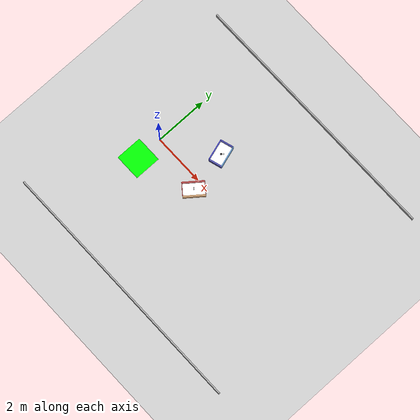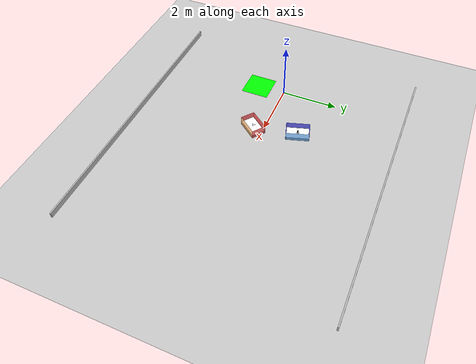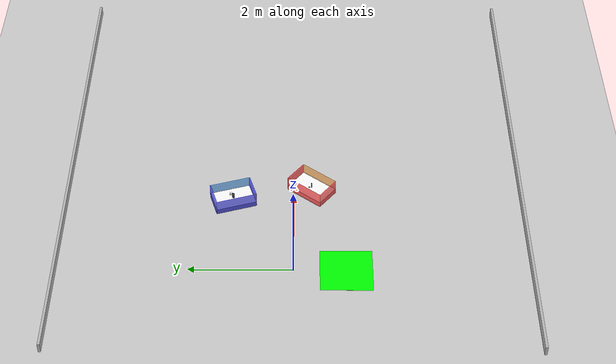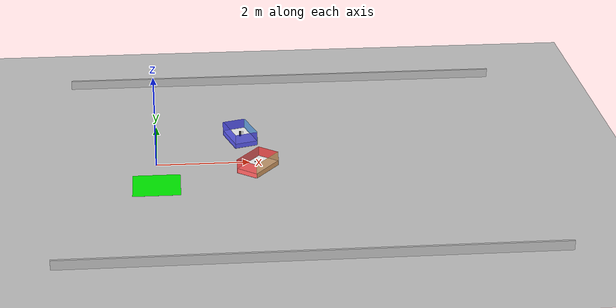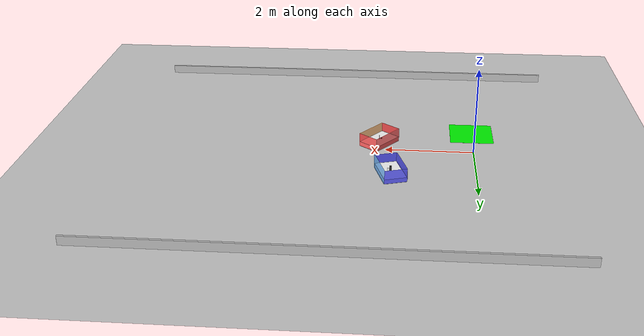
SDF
<?xml version="1.0" ?>
<sdf version="1.6">
  <world name="atwork_2024_world">
    <physics name="1ms" type="ignored">
      <max_step_size>0.001</max_step_size>
      <real_time_factor>1.0</real_time_factor>
    </physics>
    <plugin
      filename="gz-sim-physics-system"
      name="gz::sim::systems::Physics">
    </plugin>
    <plugin
      filename="gz-sim-user-commands-system"
      name="gz::sim::systems::UserCommands">
    </plugin>
    <plugin
      filename="gz-sim-scene-broadcaster-system"
      name="gz::sim::systems::SceneBroadcaster">
    </plugin>
    <plugin
      filename="gz-sim-sensors-system"
      name="gz::sim::systems::Sensors">
      <render_engine>ogre</render_engine>
    </plugin>
    <plugin
      filename="gz-sim-imu-system"
      name="gz::sim::systems::Imu">
    </plugin>
    <!-- A global light source -->
    <include>
      <uri>https://fuel.gazebosim.org/1.0/OpenRobotics/models/Sun</uri>
    </include>
    <!-- A ground plane -->
    <include>
      <uri>https://fuel.gazebosim.org/1.0/OpenRobotics/models/Ground Plane</uri>
    </include>

    <!-- Arena Walls (Extended layout to match pose_dict) -->
    <model name="arena_walls">
      <static>true</static>
      <link name="link">
        <collision name="wall1">
          <pose>3 4.5 0.1 0 0 0</pose>
          <geometry><box><size>10 0.05 0.2</size></box></geometry>
        </collision>
        <visual name="wall1_v">
          <pose>3 4.5 0.1 0 0 0</pose>
          <geometry><box><size>10 0.05 0.2</size></box></geometry>
        </visual>
        <collision name="wall2">
          <pose>3 -4.5 0.1 0 0 0</pose>
          <geometry><box><size>10 0.05 0.2</size></box></geometry>
        </collision>
        <visual name="wall2_v">
          <pose>3 -4.5 0.1 0 0 0</pose>
          <geometry><box><size>10 0.05 0.2</size></box></geometry>
        </visual>
      </link>
    </model>

    <!-- START Area (Green Tape) -->
    <model name="start_area">
      <static>true</static>
      <pose>0 -1 0.001 0 0 0</pose>
      <link name="link">
        <visual name="visual">
          <geometry><plane><normal>0 0 1</normal><size>1 1</size></plane></geometry>
          <material><ambient>0 1 0 1</ambient><diffuse>0 1 0 1</diffuse></material>
        </visual>
      </link>
    </model>

    <!-- Workstations from mission_ws.py -->
    <include>
      <name>WS01</name>
      <uri>model://table_10cm</uri>
      <pose>2.15 -0.35 0.05 0 0 -0.66</pose>
    </include>
    <include>
      <name>WS02</name>
      <uri>model://table_10cm</uri>
      <pose>1.85 1.20 0.05 0 0 0.30</pose>
    </include>

    <model name="WS01_barrier">
      <static>true</static>
      <pose>2.15 -0.35 0.0 0 0 -0.66</pose>
      <link name="link">
        <!-- back  (local -x) — solid, LiDAR sees it -->
        <collision name="back"><pose>-0.25  0.0 0.15 0 0 0</pose>
          <geometry><box><size>0.02 0.80 0.30</size></box></geometry></collision>
        <!-- left  (local +y) — solid -->
        <collision name="left"><pose> 0.0  0.40 0.15 0 0 0</pose>
          <geometry><box><size>0.50 0.02 0.30</size></box></geometry></collision>
        <!-- right (local -y) — solid -->
        <collision name="right"><pose> 0.0 -0.40 0.15 0 0 0</pose>
          <geometry><box><size>0.50 0.02 0.30</size></box></geometry></collision>
        <!-- front (local +x) — visual only, arm passes through freely -->
        <visual name="front_v"><pose> 0.25  0.0 0.15 0 0 0</pose>
          <geometry><box><size>0.02 0.80 0.30</size></box></geometry>
          <material><ambient>1 0.5 0 0.5</ambient><diffuse>1 0.5 0 0.5</diffuse></material></visual>
        <visual name="back_v"><pose>-0.25  0.0 0.15 0 0 0</pose>
          <geometry><box><size>0.02 0.80 0.30</size></box></geometry>
          <material><ambient>1 0 0 0.6</ambient><diffuse>1 0 0 0.6</diffuse></material></visual>
        <visual name="left_v"><pose> 0.0  0.40 0.15 0 0 0</pose>
          <geometry><box><size>0.50 0.02 0.30</size></box></geometry>
          <material><ambient>1 0 0 0.6</ambient><diffuse>1 0 0 0.6</diffuse></material></visual>
        <visual name="right_v"><pose> 0.0 -0.40 0.15 0 0 0</pose>
          <geometry><box><size>0.50 0.02 0.30</size></box></geometry>
          <material><ambient>1 0 0 0.6</ambient><diffuse>1 0 0 0.6</diffuse></material></visual>
      </link>
    </model>

    <!-- WS02 table: center (1.85,1.20), size 0.5×0.8 m, yaw=0.30 rad -->
    <model name="WS02_barrier">
      <static>true</static>
      <pose>1.85 1.20 0.0 0 0 0.30</pose>
      <link name="link">
        <collision name="back"><pose>-0.25  0.0 0.15 0 0 0</pose>
          <geometry><box><size>0.02 0.80 0.30</size></box></geometry></collision>
        <collision name="left"><pose> 0.0  0.40 0.15 0 0 0</pose>
          <geometry><box><size>0.50 0.02 0.30</size></box></geometry></collision>
        <collision name="right"><pose> 0.0 -0.40 0.15 0 0 0</pose>
          <geometry><box><size>0.50 0.02 0.30</size></box></geometry></collision>
        <visual name="front_v"><pose> 0.25  0.0 0.15 0 0 0</pose>
          <geometry><box><size>0.02 0.80 0.30</size></box></geometry>
          <material><ambient>0 0.5 1 0.5</ambient><diffuse>0 0.5 1 0.5</diffuse></material></visual>
        <visual name="back_v"><pose>-0.25  0.0 0.15 0 0 0</pose>
          <geometry><box><size>0.02 0.80 0.30</size></box></geometry>
          <material><ambient>0 0 1 0.6</ambient><diffuse>0 0 1 0.6</diffuse></material></visual>
        <visual name="left_v"><pose> 0.0  0.40 0.15 0 0 0</pose>
          <geometry><box><size>0.50 0.02 0.30</size></box></geometry>
          <material><ambient>0 0 1 0.6</ambient><diffuse>0 0 1 0.6</diffuse></material></visual>
        <visual name="right_v"><pose> 0.0 -0.40 0.15 0 0 0</pose>
          <geometry><box><size>0.50 0.02 0.30</size></box></geometry>
          <material><ambient>0 0 1 0.6</ambient><diffuse>0 0 1 0.6</diffuse></material></visual>
      </link>
    </model>

    <!-- Objects on WS01 -->
    <include>
      <name>obj_f20_1</name>
      <uri>model://f20_20</uri>
      <pose>2.15 -0.35 0.15 0 0 0</pose>
    </include>
    <include>
      <name>obj_m20_1</name>
      <uri>model://nut_m20</uri>
      <pose>2.1 -0.3 0.15 0 0 0</pose>
    </include>

    <!-- Objects on WS02 -->
    <include>
      <name>obj_s40_1</name>
      <uri>model://s40_40</uri>
      <pose>1.85 1.20 0.15 0 0 0</pose>
    </include>

    <!-- ATTC Cube on WS02 -->
    <include>
      <name>attc_1</name>
      <uri>model://attc_cube</uri>
      <pose>1.9 1.25 0.15 0 0 0</pose>
    </include>

    <gui fullscreen='0'>
      <camera name='user_camera'>
        <pose>4.0 1.0 10.0 0 1.57 -1.57</pose>
        <view_controller>orbit</view_controller>
      </camera>
    </gui>

  </world>
</sdf>

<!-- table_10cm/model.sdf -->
<sdf version="1.6">
  <model name="table_10cm">
    <static>true</static>
    <link name="link">
      <collision name="collision">
        <geometry>
          <box>
            <size>0.5 0.8 0.1</size>
          </box>
        </geometry>
      </collision>
      <visual name="visual">
        <geometry>
          <box>
            <size>0.5 0.8 0.1</size>
          </box>
        </geometry>
        <material>
          <ambient>1 1 1 1</ambient>
          <diffuse>1 1 1 1</diffuse>
          <specular>0.1 0.1 0.1 1</specular>
        </material>
      </visual>
    </link>
  </model>
</sdf>

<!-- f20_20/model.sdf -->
<sdf version="1.6">
  <model name="f20_20">
    <link name="link">
      <inertial>
        <mass>0.049</mass>
        <inertia>
          <ixx>4.25e-05</ixx>
          <ixy>0</ixy>
          <ixz>0</ixz>
          <iyy>4.25e-05</iyy>
          <iyz>0</iyz>
          <izz>3.26e-06</izz>
        </inertia>
      </inertial>
      <collision name="collision">
        <geometry>
          <box>
            <size>0.02 0.02 0.1</size>
          </box>
        </geometry>
      </collision>
      <visual name="visual">
        <geometry>
          <box>
            <size>0.02 0.02 0.1</size>
          </box>
        </geometry>
        <material>
          <ambient>0.1 0.1 0.1 1</ambient>
          <diffuse>0.1 0.1 0.1 1</diffuse>
          <specular>0.5 0.5 0.5 1</specular>
        </material>
      </visual>
    </link>
  </model>
</sdf>

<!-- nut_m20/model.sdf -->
<sdf version="1.6">
  <model name="nut_m20">
    <link name="link">
      <inertial>
        <mass>0.056</mass>
        <inertia>
          <ixx>3.6e-06</ixx>
          <ixy>0</ixy>
          <ixz>0</ixz>
          <iyy>3.6e-06</iyy>
          <iyz>0</iyz>
          <izz>6.3e-06</izz>
        </inertia>
      </inertial>
      <collision name="collision">
        <geometry>
          <cylinder>
            <radius>0.015</radius>
            <length>0.01</length>
          </cylinder>
        </geometry>
      </collision>
      <visual name="visual">
        <geometry>
          <cylinder>
            <radius>0.015</radius>
            <length>0.01</length>
          </cylinder>
        </geometry>
        <material>
          <ambient>0.3 0.3 0.3 1</ambient>
          <diffuse>0.3 0.3 0.3 1</diffuse>
        </material>
      </visual>
    </link>
  </model>
</sdf>

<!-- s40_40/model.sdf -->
<sdf version="1.6">
  <model name="s40_40">
    <link name="link">
      <inertial>
        <mass>0.186</mass>
        <inertia>
          <ixx>0.00018</ixx>
          <ixy>0</ixy>
          <ixz>0</ixz>
          <iyy>0.00018</iyy>
          <iyz>0</iyz>
          <izz>4.96e-05</izz>
        </inertia>
      </inertial>
      <collision name="collision">
        <geometry>
          <box>
            <size>0.04 0.04 0.1</size>
          </box>
        </geometry>
      </collision>
      <visual name="visual">
        <geometry>
          <box>
            <size>0.04 0.04 0.1</size>
          </box>
        </geometry>
        <material>
          <ambient>0.15 0.15 0.15 1</ambient>
          <diffuse>0.15 0.15 0.15 1</diffuse>
          <specular>0.5 0.5 0.5 1</specular>
        </material>
      </visual>
    </link>
  </model>
</sdf>

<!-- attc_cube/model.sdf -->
<sdf version="1.6">
  <model name="attc_cube">
    <link name="link">
      <inertial>
        <mass>0.05</mass>
        <inertia>
          <ixx>1.47e-05</ixx>
          <ixy>0</ixy>
          <ixz>0</ixz>
          <iyy>1.47e-05</iyy>
          <iyz>0</iyz>
          <izz>1.47e-05</izz>
        </inertia>
      </inertial>

      <collision name="collision">
        <geometry>
          <box>
            <size>0.042 0.042 0.042</size>
          </box>
        </geometry>
      </collision>

      <!-- Main cube body: white -->
      <visual name="body">
        <geometry>
          <box>
            <size>0.042 0.042 0.042</size>
          </box>
        </geometry>
        <material>
          <ambient>0.95 0.95 0.95 1</ambient>
          <diffuse>0.95 0.95 0.95 1</diffuse>
          <specular>0.1 0.1 0.1 1</specular>
        </material>
      </visual>

      <visual name="apriltag_top">
        <pose>0 0 0.0211 0 0 0</pose>
        <geometry>
          <box>
            <size>0.040 0.040 0.0001</size>
          </box>
        </geometry>
        <material>
          <ambient>1 1 1 1</ambient>
          <diffuse>1 1 1 1</diffuse>
          <pbr>
            <metal>
              <albedo_map>model://atwork_arena_description/materials/textures/apriltag_36h11_id0.png</albedo_map>
            </metal>
          </pbr>
        </material>
      </visual>

      <!-- AprilTag on the front face (Y+) — useful when cube is upright -->
      <visual name="apriltag_front">
        <pose>0 0.0211 0 1.5708 0 0</pose>
        <geometry>
          <box>
            <size>0.040 0.040 0.0001</size>
          </box>
        </geometry>
        <material>
          <ambient>1 1 1 1</ambient>
          <diffuse>1 1 1 1</diffuse>
          <pbr>
            <metal>
              <albedo_map>model://atwork_arena_description/materials/textures/apriltag_36h11_id0.png</albedo_map>
            </metal>
          </pbr>
        </material>
      </visual>
    </link>
  </model>
</sdf>
